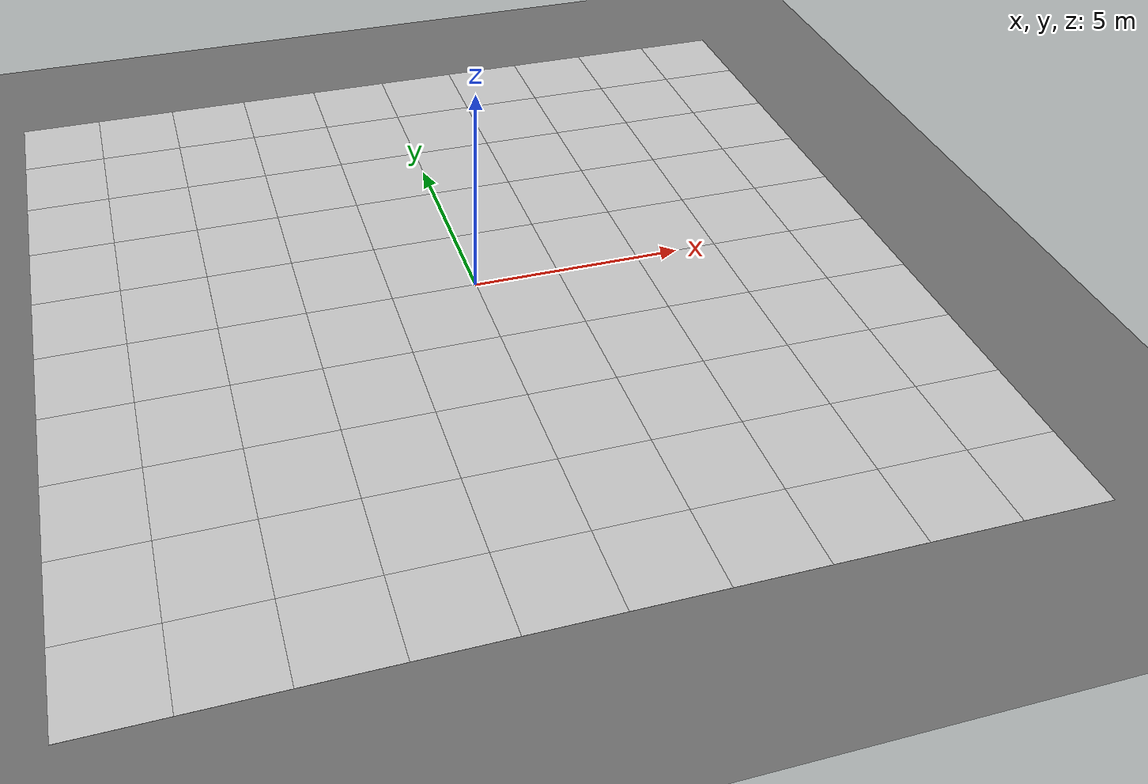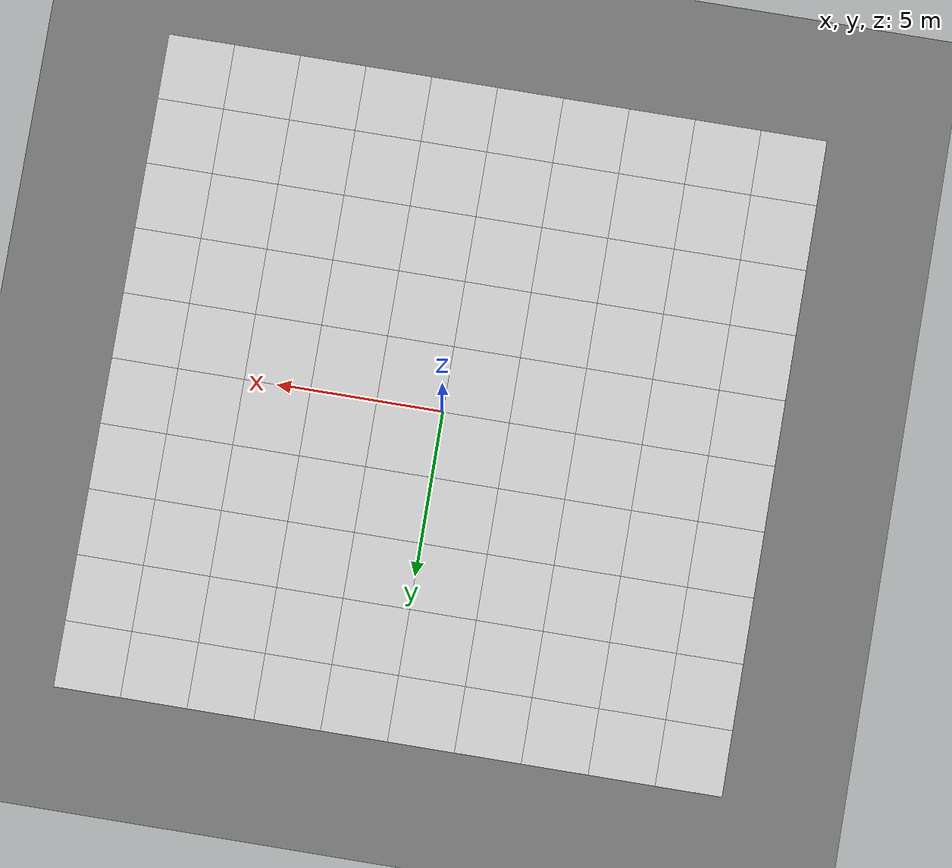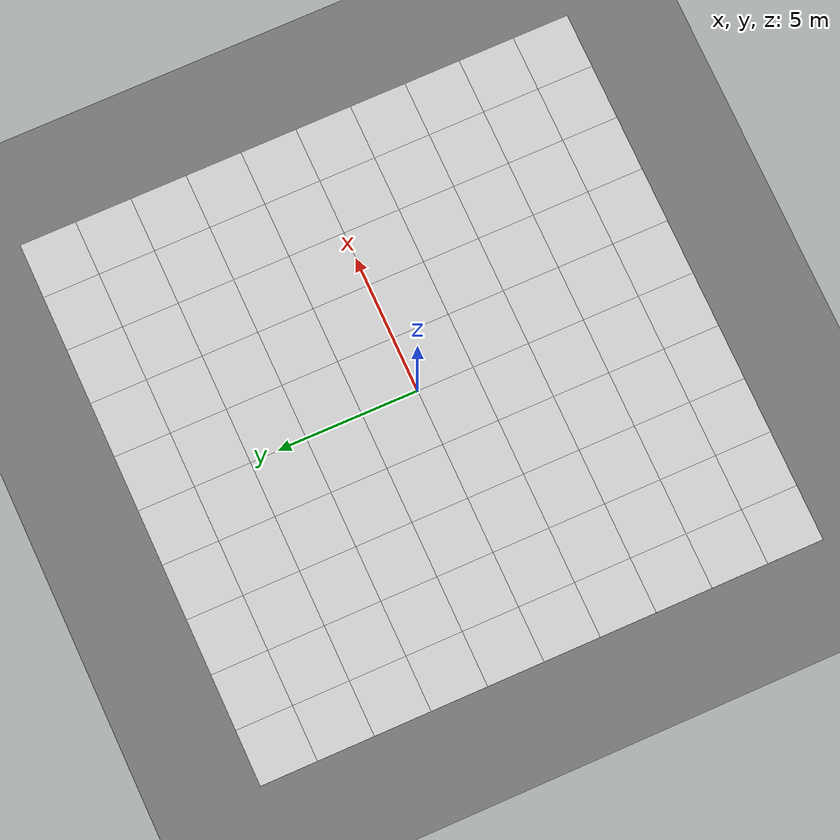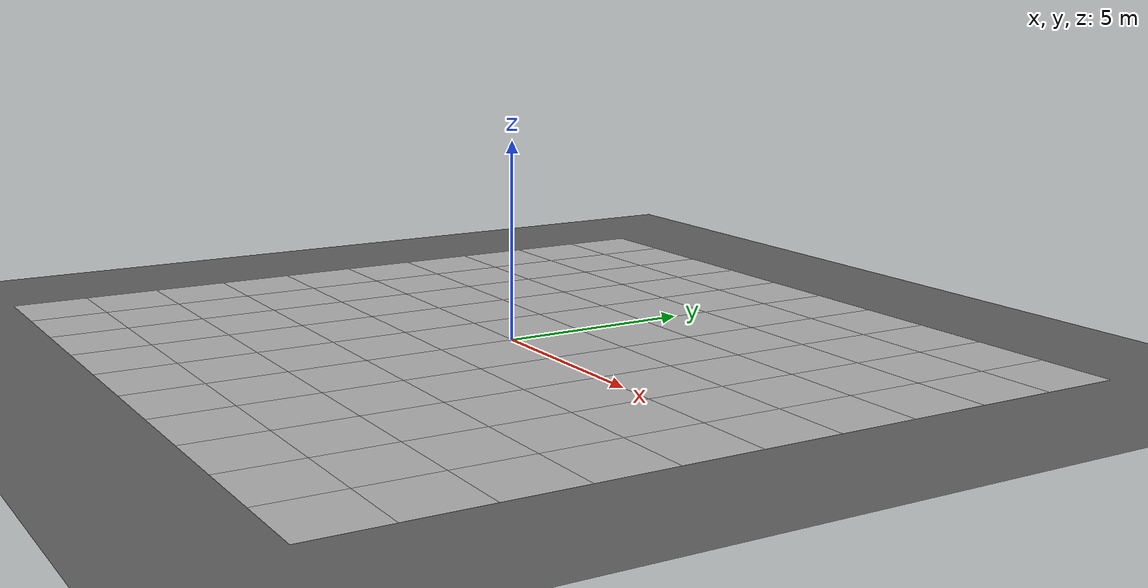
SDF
<sdf version="1.9">
 <world name="test">
  <model name="ground_plane">
   <static>true</static>
   <link name="link">
    <collision name="collision">
     <geometry><plane><normal>0 0 1</normal><size>100 100</size></plane></geometry>
    </collision>
    <visual name="visual">
     <geometry><plane><normal>0 0 1</normal><size>100 100</size></plane></geometry>
     <material>
      <lighting>true</lighting>
      <ambient>0.45 0.45 0.45 1</ambient>
      <diffuse>0.45 0.45 0.45 1</diffuse>
      <specular>0.0 0.0 0.0 1</specular>
     </material>
    </visual>
   </link>
  </model>
  <model name="ground_tiles">
   <static>true</static>
   <pose>0 0 0.002 0 0 0</pose>
   <link name="link">
    <visual name="tile_xpm9_ypm9">
     <pose>-9 -9 0 0 0 0</pose>
     <geometry><plane><normal>0 0 1</normal><size>2 2</size></plane></geometry>
     <material>
      <lighting>true</lighting>
      <ambient>0.8 0.8 0.8 1</ambient>
      <diffuse>0.8 0.8 0.8 1</diffuse>
      <specular>0.2 0.2 0.2 1</specular>
      <pbr>
       <metal>
        <albedo_map>model://ground_texture/media/concrete_floor.png</albedo_map>
        <metalness>0.0</metalness>
        <roughness>0.9</roughness>
       </metal>
      </pbr>
     </material>
    </visual>
    <visual name="tile_xpm9_ypm7">
     <pose>-9 -7 0 0 0 0</pose>
     <geometry><plane><normal>0 0 1</normal><size>2 2</size></plane></geometry>
     <material>
      <lighting>true</lighting>
      <ambient>0.8 0.8 0.8 1</ambient>
      <diffuse>0.8 0.8 0.8 1</diffuse>
      <specular>0.2 0.2 0.2 1</specular>
      <pbr>
       <metal>
        <albedo_map>model://ground_texture/media/concrete_floor.png</albedo_map>
        <metalness>0.0</metalness>
        <roughness>0.9</roughness>
       </metal>
      </pbr>
     </material>
    </visual>
    <visual name="tile_xpm9_ypm5">
     <pose>-9 -5 0 0 0 0</pose>
     <geometry><plane><normal>0 0 1</normal><size>2 2</size></plane></geometry>
     <material>
      <lighting>true</lighting>
      <ambient>0.8 0.8 0.8 1</ambient>
      <diffuse>0.8 0.8 0.8 1</diffuse>
      <specular>0.2 0.2 0.2 1</specular>
      <pbr>
       <metal>
        <albedo_map>model://ground_texture/media/concrete_floor.png</albedo_map>
        <metalness>0.0</metalness>
        <roughness>0.9</roughness>
       </metal>
      </pbr>
     </material>
    </visual>
    <visual name="tile_xpm9_ypm3">
     <pose>-9 -3 0 0 0 0</pose>
     <geometry><plane><normal>0 0 1</normal><size>2 2</size></plane></geometry>
     <material>
      <lighting>true</lighting>
      <ambient>0.8 0.8 0.8 1</ambient>
      <diffuse>0.8 0.8 0.8 1</diffuse>
      <specular>0.2 0.2 0.2 1</specular>
      <pbr>
       <metal>
        <albedo_map>model://ground_texture/media/concrete_floor.png</albedo_map>
        <metalness>0.0</metalness>
        <roughness>0.9</roughness>
       </metal>
      </pbr>
     </material>
    </visual>
    <visual name="tile_xpm9_ypm1">
     <pose>-9 -1 0 0 0 0</pose>
     <geometry><plane><normal>0 0 1</normal><size>2 2</size></plane></geometry>
     <material>
      <lighting>true</lighting>
      <ambient>0.8 0.8 0.8 1</ambient>
      <diffuse>0.8 0.8 0.8 1</diffuse>
      <specular>0.2 0.2 0.2 1</specular>
      <pbr>
       <metal>
        <albedo_map>model://ground_texture/media/concrete_floor.png</albedo_map>
        <metalness>0.0</metalness>
        <roughness>0.9</roughness>
       </metal>
      </pbr>
     </material>
    </visual>
    <visual name="tile_xpm9_yp1">
     <pose>-9 1 0 0 0 0</pose>
     <geometry><plane><normal>0 0 1</normal><size>2 2</size></plane></geometry>
     <material>
      <lighting>true</lighting>
      <ambient>0.8 0.8 0.8 1</ambient>
      <diffuse>0.8 0.8 0.8 1</diffuse>
      <specular>0.2 0.2 0.2 1</specular>
      <pbr>
       <metal>
        <albedo_map>model://ground_texture/media/concrete_floor.png</albedo_map>
        <metalness>0.0</metalness>
        <roughness>0.9</roughness>
       </metal>
      </pbr>
     </material>
    </visual>
    <visual name="tile_xpm9_yp3">
     <pose>-9 3 0 0 0 0</pose>
     <geometry><plane><normal>0 0 1</normal><size>2 2</size></plane></geometry>
     <material>
      <lighting>true</lighting>
      <ambient>0.8 0.8 0.8 1</ambient>
      <diffuse>0.8 0.8 0.8 1</diffuse>
      <specular>0.2 0.2 0.2 1</specular>
      <pbr>
       <metal>
        <albedo_map>model://ground_texture/media/concrete_floor.png</albedo_map>
        <metalness>0.0</metalness>
        <roughness>0.9</roughness>
       </metal>
      </pbr>
     </material>
    </visual>
    <visual name="tile_xpm9_yp5">
     <pose>-9 5 0 0 0 0</pose>
     <geometry><plane><normal>0 0 1</normal><size>2 2</size></plane></geometry>
     <material>
      <lighting>true</lighting>
      <ambient>0.8 0.8 0.8 1</ambient>
      <diffuse>0.8 0.8 0.8 1</diffuse>
      <specular>0.2 0.2 0.2 1</specular>
      <pbr>
       <metal>
        <albedo_map>model://ground_texture/media/concrete_floor.png</albedo_map>
        <metalness>0.0</metalness>
        <roughness>0.9</roughness>
       </metal>
      </pbr>
     </material>
    </visual>
    <visual name="tile_xpm9_yp7">
     <pose>-9 7 0 0 0 0</pose>
     <geometry><plane><normal>0 0 1</normal><size>2 2</size></plane></geometry>
     <material>
      <lighting>true</lighting>
      <ambient>0.8 0.8 0.8 1</ambient>
      <diffuse>0.8 0.8 0.8 1</diffuse>
      <specular>0.2 0.2 0.2 1</specular>
      <pbr>
       <metal>
        <albedo_map>model://ground_texture/media/concrete_floor.png</albedo_map>
        <metalness>0.0</metalness>
        <roughness>0.9</roughness>
       </metal>
      </pbr>
     </material>
    </visual>
    <visual name="tile_xpm9_yp9">
     <pose>-9 9 0 0 0 0</pose>
     <geometry><plane><normal>0 0 1</normal><size>2 2</size></plane></geometry>
     <material>
      <lighting>true</lighting>
      <ambient>0.8 0.8 0.8 1</ambient>
      <diffuse>0.8 0.8 0.8 1</diffuse>
      <specular>0.2 0.2 0.2 1</specular>
      <pbr>
       <metal>
        <albedo_map>model://ground_texture/media/concrete_floor.png</albedo_map>
        <metalness>0.0</metalness>
        <roughness>0.9</roughness>
       </metal>
      </pbr>
     </material>
    </visual>
    <visual name="tile_xpm7_ypm9">
     <pose>-7 -9 0 0 0 0</pose>
     <geometry><plane><normal>0 0 1</normal><size>2 2</size></plane></geometry>
     <material>
      <lighting>true</lighting>
      <ambient>0.8 0.8 0.8 1</ambient>
      <diffuse>0.8 0.8 0.8 1</diffuse>
      <specular>0.2 0.2 0.2 1</specular>
      <pbr>
       <metal>
        <albedo_map>model://ground_texture/media/concrete_floor.png</albedo_map>
        <metalness>0.0</metalness>
        <roughness>0.9</roughness>
       </metal>
      </pbr>
     </material>
    </visual>
    <visual name="tile_xpm7_ypm7">
     <pose>-7 -7 0 0 0 0</pose>
     <geometry><plane><normal>0 0 1</normal><size>2 2</size></plane></geometry>
     <material>
      <lighting>true</lighting>
      <ambient>0.8 0.8 0.8 1</ambient>
      <diffuse>0.8 0.8 0.8 1</diffuse>
      <specular>0.2 0.2 0.2 1</specular>
      <pbr>
       <metal>
        <albedo_map>model://ground_texture/media/concrete_floor.png</albedo_map>
        <metalness>0.0</metalness>
        <roughness>0.9</roughness>
       </metal>
      </pbr>
     </material>
    </visual>
    <visual name="tile_xpm7_ypm5">
     <pose>-7 -5 0 0 0 0</pose>
     <geometry><plane><normal>0 0 1</normal><size>2 2</size></plane></geometry>
     <material>
      <lighting>true</lighting>
      <ambient>0.8 0.8 0.8 1</ambient>
      <diffuse>0.8 0.8 0.8 1</diffuse>
      <specular>0.2 0.2 0.2 1</specular>
      <pbr>
       <metal>
        <albedo_map>model://ground_texture/media/concrete_floor.png</albedo_map>
        <metalness>0.0</metalness>
        <roughness>0.9</roughness>
       </metal>
      </pbr>
     </material>
    </visual>
    <visual name="tile_xpm7_ypm3">
     <pose>-7 -3 0 0 0 0</pose>
     <geometry><plane><normal>0 0 1</normal><size>2 2</size></plane></geometry>
     <material>
      <lighting>true</lighting>
      <ambient>0.8 0.8 0.8 1</ambient>
      <diffuse>0.8 0.8 0.8 1</diffuse>
      <specular>0.2 0.2 0.2 1</specular>
      <pbr>
       <metal>
        <albedo_map>model://ground_texture/media/concrete_floor.png</albedo_map>
        <metalness>0.0</metalness>
        <roughness>0.9</roughness>
       </metal>
      </pbr>
     </material>
    </visual>
    <visual name="tile_xpm7_ypm1">
     <pose>-7 -1 0 0 0 0</pose>
     <geometry><plane><normal>0 0 1</normal><size>2 2</size></plane></geometry>
     <material>
      <lighting>true</lighting>
      <ambient>0.8 0.8 0.8 1</ambient>
      <diffuse>0.8 0.8 0.8 1</diffuse>
      <specular>0.2 0.2 0.2 1</specular>
      <pbr>
       <metal>
        <albedo_map>model://ground_texture/media/concrete_floor.png</albedo_map>
        <metalness>0.0</metalness>
        <roughness>0.9</roughness>
       </metal>
      </pbr>
     </material>
    </visual>
    <visual name="tile_xpm7_yp1">
     <pose>-7 1 0 0 0 0</pose>
     <geometry><plane><normal>0 0 1</normal><size>2 2</size></plane></geometry>
     <material>
      <lighting>true</lighting>
      <ambient>0.8 0.8 0.8 1</ambient>
      <diffuse>0.8 0.8 0.8 1</diffuse>
      <specular>0.2 0.2 0.2 1</specular>
      <pbr>
       <metal>
        <albedo_map>model://ground_texture/media/concrete_floor.png</albedo_map>
        <metalness>0.0</metalness>
        <roughness>0.9</roughness>
       </metal>
      </pbr>
     </material>
    </visual>
    <visual name="tile_xpm7_yp3">
     <pose>-7 3 0 0 0 0</pose>
     <geometry><plane><normal>0 0 1</normal><size>2 2</size></plane></geometry>
     <material>
      <lighting>true</lighting>
      <ambient>0.8 0.8 0.8 1</ambient>
      <diffuse>0.8 0.8 0.8 1</diffuse>
      <specular>0.2 0.2 0.2 1</specular>
      <pbr>
       <metal>
        <albedo_map>model://ground_texture/media/concrete_floor.png</albedo_map>
        <metalness>0.0</metalness>
        <roughness>0.9</roughness>
       </metal>
      </pbr>
     </material>
    </visual>
    <visual name="tile_xpm7_yp5">
     <pose>-7 5 0 0 0 0</pose>
     <geometry><plane><normal>0 0 1</normal><size>2 2</size></plane></geometry>
     <material>
      <lighting>true</lighting>
      <ambient>0.8 0.8 0.8 1</ambient>
      <diffuse>0.8 0.8 0.8 1</diffuse>
      <specular>0.2 0.2 0.2 1</specular>
      <pbr>
       <metal>
        <albedo_map>model://ground_texture/media/concrete_floor.png</albedo_map>
        <metalness>0.0</metalness>
        <roughness>0.9</roughness>
       </metal>
      </pbr>
     </material>
    </visual>
    <visual name="tile_xpm7_yp7">
     <pose>-7 7 0 0 0 0</pose>
     <geometry><plane><normal>0 0 1</normal><size>2 2</size></plane></geometry>
     <material>
      <lighting>true</lighting>
      <ambient>0.8 0.8 0.8 1</ambient>
      <diffuse>0.8 0.8 0.8 1</diffuse>
      <specular>0.2 0.2 0.2 1</specular>
      <pbr>
       <metal>
        <albedo_map>model://ground_texture/media/concrete_floor.png</albedo_map>
        <metalness>0.0</metalness>
        <roughness>0.9</roughness>
       </metal>
      </pbr>
     </material>
    </visual>
    <visual name="tile_xpm7_yp9">
     <pose>-7 9 0 0 0 0</pose>
     <geometry><plane><normal>0 0 1</normal><size>2 2</size></plane></geometry>
     <material>
      <lighting>true</lighting>
      <ambient>0.8 0.8 0.8 1</ambient>
      <diffuse>0.8 0.8 0.8 1</diffuse>
      <specular>0.2 0.2 0.2 1</specular>
      <pbr>
       <metal>
        <albedo_map>model://ground_texture/media/concrete_floor.png</albedo_map>
        <metalness>0.0</metalness>
        <roughness>0.9</roughness>
       </metal>
      </pbr>
     </material>
    </visual>
    <visual name="tile_xpm5_ypm9">
     <pose>-5 -9 0 0 0 0</pose>
     <geometry><plane><normal>0 0 1</normal><size>2 2</size></plane></geometry>
     <material>
      <lighting>true</lighting>
      <ambient>0.8 0.8 0.8 1</ambient>
      <diffuse>0.8 0.8 0.8 1</diffuse>
      <specular>0.2 0.2 0.2 1</specular>
      <pbr>
       <metal>
        <albedo_map>model://ground_texture/media/concrete_floor.png</albedo_map>
        <metalness>0.0</metalness>
        <roughness>0.9</roughness>
       </metal>
      </pbr>
     </material>
    </visual>
    <visual name="tile_xpm5_ypm7">
     <pose>-5 -7 0 0 0 0</pose>
     <geometry><plane><normal>0 0 1</normal><size>2 2</size></plane></geometry>
     <material>
      <lighting>true</lighting>
      <ambient>0.8 0.8 0.8 1</ambient>
      <diffuse>0.8 0.8 0.8 1</diffuse>
      <specular>0.2 0.2 0.2 1</specular>
      <pbr>
       <metal>
        <albedo_map>model://ground_texture/media/concrete_floor.png</albedo_map>
        <metalness>0.0</metalness>
        <roughness>0.9</roughness>
       </metal>
      </pbr>
     </material>
    </visual>
    <visual name="tile_xpm5_ypm5">
     <pose>-5 -5 0 0 0 0</pose>
     <geometry><plane><normal>0 0 1</normal><size>2 2</size></plane></geometry>
     <material>
      <lighting>true</lighting>
      <ambient>0.8 0.8 0.8 1</ambient>
      <diffuse>0.8 0.8 0.8 1</diffuse>
      <specular>0.2 0.2 0.2 1</specular>
      <pbr>
       <metal>
        <albedo_map>model://ground_texture/media/concrete_floor.png</albedo_map>
        <metalness>0.0</metalness>
        <roughness>0.9</roughness>
       </metal>
      </pbr>
     </material>
    </visual>
    <visual name="tile_xpm5_ypm3">
     <pose>-5 -3 0 0 0 0</pose>
     <geometry><plane><normal>0 0 1</normal><size>2 2</size></plane></geometry>
     <material>
      <lighting>true</lighting>
      <ambient>0.8 0.8 0.8 1</ambient>
      <diffuse>0.8 0.8 0.8 1</diffuse>
      <specular>0.2 0.2 0.2 1</specular>
      <pbr>
       <metal>
        <albedo_map>model://ground_texture/media/concrete_floor.png</albedo_map>
        <metalness>0.0</metalness>
        <roughness>0.9</roughness>
       </metal>
      </pbr>
     </material>
    </visual>
    <visual name="tile_xpm5_ypm1">
     <pose>-5 -1 0 0 0 0</pose>
     <geometry><plane><normal>0 0 1</normal><size>2 2</size></plane></geometry>
     <material>
      <lighting>true</lighting>
      <ambient>0.8 0.8 0.8 1</ambient>
      <diffuse>0.8 0.8 0.8 1</diffuse>
      <specular>0.2 0.2 0.2 1</specular>
      <pbr>
       <metal>
        <albedo_map>model://ground_texture/media/concrete_floor.png</albedo_map>
        <metalness>0.0</metalness>
        <roughness>0.9</roughness>
       </metal>
      </pbr>
     </material>
    </visual>
    <visual name="tile_xpm5_yp1">
     <pose>-5 1 0 0 0 0</pose>
     <geometry><plane><normal>0 0 1</normal><size>2 2</size></plane></geometry>
     <material>
      <lighting>true</lighting>
      <ambient>0.8 0.8 0.8 1</ambient>
      <diffuse>0.8 0.8 0.8 1</diffuse>
      <specular>0.2 0.2 0.2 1</specular>
      <pbr>
       <metal>
        <albedo_map>model://ground_texture/media/concrete_floor.png</albedo_map>
        <metalness>0.0</metalness>
        <roughness>0.9</roughness>
       </metal>
      </pbr>
     </material>
    </visual>
    <visual name="tile_xpm5_yp3">
     <pose>-5 3 0 0 0 0</pose>
     <geometry><plane><normal>0 0 1</normal><size>2 2</size></plane></geometry>
     <material>
      <lighting>true</lighting>
      <ambient>0.8 0.8 0.8 1</ambient>
      <diffuse>0.8 0.8 0.8 1</diffuse>
      <specular>0.2 0.2 0.2 1</specular>
      <pbr>
       <metal>
        <albedo_map>model://ground_texture/media/concrete_floor.png</albedo_map>
        <metalness>0.0</metalness>
        <roughness>0.9</roughness>
       </metal>
      </pbr>
     </material>
    </visual>
    <visual name="tile_xpm5_yp5">
     <pose>-5 5 0 0 0 0</pose>
     <geometry><plane><normal>0 0 1</normal><size>2 2</size></plane></geometry>
     <material>
      <lighting>true</lighting>
      <ambient>0.8 0.8 0.8 1</ambient>
      <diffuse>0.8 0.8 0.8 1</diffuse>
      <specular>0.2 0.2 0.2 1</specular>
      <pbr>
       <metal>
        <albedo_map>model://ground_texture/media/concrete_floor.png</albedo_map>
        <metalness>0.0</metalness>
        <roughness>0.9</roughness>
       </metal>
      </pbr>
     </material>
    </visual>
    <visual name="tile_xpm5_yp7">
     <pose>-5 7 0 0 0 0</pose>
     <geometry><plane><normal>0 0 1</normal><size>2 2</size></plane></geometry>
     <material>
      <lighting>true</lighting>
      <ambient>0.8 0.8 0.8 1</ambient>
      <diffuse>0.8 0.8 0.8 1</diffuse>
      <specular>0.2 0.2 0.2 1</specular>
      <pbr>
       <metal>
        <albedo_map>model://ground_texture/media/concrete_floor.png</albedo_map>
        <metalness>0.0</metalness>
        <roughness>0.9</roughness>
       </metal>
      </pbr>
     </material>
    </visual>
    <visual name="tile_xpm5_yp9">
     <pose>-5 9 0 0 0 0</pose>
     <geometry><plane><normal>0 0 1</normal><size>2 2</size></plane></geometry>
     <material>
      <lighting>true</lighting>
      <ambient>0.8 0.8 0.8 1</ambient>
      <diffuse>0.8 0.8 0.8 1</diffuse>
      <specular>0.2 0.2 0.2 1</specular>
      <pbr>
       <metal>
        <albedo_map>model://ground_texture/media/concrete_floor.png</albedo_map>
        <metalness>0.0</metalness>
        <roughness>0.9</roughness>
       </metal>
      </pbr>
     </material>
    </visual>
    <visual name="tile_xpm3_ypm9">
     <pose>-3 -9 0 0 0 0</pose>
     <geometry><plane><normal>0 0 1</normal><size>2 2</size></plane></geometry>
     <material>
      <lighting>true</lighting>
      <ambient>0.8 0.8 0.8 1</ambient>
      <diffuse>0.8 0.8 0.8 1</diffuse>
      <specular>0.2 0.2 0.2 1</specular>
      <pbr>
       <metal>
        <albedo_map>model://ground_texture/media/concrete_floor.png</albedo_map>
        <metalness>0.0</metalness>
        <roughness>0.9</roughness>
       </metal>
      </pbr>
     </material>
    </visual>
    <visual name="tile_xpm3_ypm7">
     <pose>-3 -7 0 0 0 0</pose>
     <geometry><plane><normal>0 0 1</normal><size>2 2</size></plane></geometry>
     <material>
      <lighting>true</lighting>
      <ambient>0.8 0.8 0.8 1</ambient>
      <diffuse>0.8 0.8 0.8 1</diffuse>
      <specular>0.2 0.2 0.2 1</specular>
      <pbr>
       <metal>
        <albedo_map>model://ground_texture/media/concrete_floor.png</albedo_map>
        <metalness>0.0</metalness>
        <roughness>0.9</roughness>
       </metal>
      </pbr>
     </material>
    </visual>
    <visual name="tile_xpm3_ypm5">
     <pose>-3 -5 0 0 0 0</pose>
     <geometry><plane><normal>0 0 1</normal><size>2 2</size></plane></geometry>
     <material>
      <lighting>true</lighting>
      <ambient>0.8 0.8 0.8 1</ambient>
      <diffuse>0.8 0.8 0.8 1</diffuse>
      <specular>0.2 0.2 0.2 1</specular>
      <pbr>
       <metal>
        <albedo_map>model://ground_texture/media/concrete_floor.png</albedo_map>
        <metalness>0.0</metalness>
        <roughness>0.9</roughness>
       </metal>
      </pbr>
     </material>
    </visual>
    <visual name="tile_xpm3_ypm3">
     <pose>-3 -3 0 0 0 0</pose>
     <geometry><plane><normal>0 0 1</normal><size>2 2</size></plane></geometry>
     <material>
      <lighting>true</lighting>
      <ambient>0.8 0.8 0.8 1</ambient>
      <diffuse>0.8 0.8 0.8 1</diffuse>
      <specular>0.2 0.2 0.2 1</specular>
      <pbr>
       <metal>
        <albedo_map>model://ground_texture/media/concrete_floor.png</albedo_map>
        <metalness>0.0</metalness>
        <roughness>0.9</roughness>
       </metal>
      </pbr>
     </material>
    </visual>
    <visual name="tile_xpm3_ypm1">
     <pose>-3 -1 0 0 0 0</pose>
     <geometry><plane><normal>0 0 1</normal><size>2 2</size></plane></geometry>
     <material>
      <lighting>true</lighting>
      <ambient>0.8 0.8 0.8 1</ambient>
      <diffuse>0.8 0.8 0.8 1</diffuse>
      <specular>0.2 0.2 0.2 1</specular>
      <pbr>
       <metal>
        <albedo_map>model://ground_texture/media/concrete_floor.png</albedo_map>
        <metalness>0.0</metalness>
        <roughness>0.9</roughness>
       </metal>
      </pbr>
     </material>
    </visual>
    <visual name="tile_xpm3_yp1">
     <pose>-3 1 0 0 0 0</pose>
     <geometry><plane><normal>0 0 1</normal><size>2 2</size></plane></geometry>
     <material>
      <lighting>true</lighting>
      <ambient>0.8 0.8 0.8 1</ambient>
      <diffuse>0.8 0.8 0.8 1</diffuse>
      <specular>0.2 0.2 0.2 1</specular>
      <pbr>
       <metal>
        <albedo_map>model://ground_texture/media/concrete_floor.png</albedo_map>
        <metalness>0.0</metalness>
        <roughness>0.9</roughness>
       </metal>
      </pbr>
     </material>
    </visual>
    <visual name="tile_xpm3_yp3">
     <pose>-3 3 0 0 0 0</pose>
     <geometry><plane><normal>0 0 1</normal><size>2 2</size></plane></geometry>
     <material>
      <lighting>true</lighting>
      <ambient>0.8 0.8 0.8 1</ambient>
      <diffuse>0.8 0.8 0.8 1</diffuse>
      <specular>0.2 0.2 0.2 1</specular>
      <pbr>
       <metal>
        <albedo_map>model://ground_texture/media/concrete_floor.png</albedo_map>
        <metalness>0.0</metalness>
        <roughness>0.9</roughness>
       </metal>
      </pbr>
     </material>
    </visual>
    <visual name="tile_xpm3_yp5">
     <pose>-3 5 0 0 0 0</pose>
     <geometry><plane><normal>0 0 1</normal><size>2 2</size></plane></geometry>
     <material>
      <lighting>true</lighting>
      <ambient>0.8 0.8 0.8 1</ambient>
      <diffuse>0.8 0.8 0.8 1</diffuse>
      <specular>0.2 0.2 0.2 1</specular>
      <pbr>
       <metal>
        <albedo_map>model://ground_texture/media/concrete_floor.png</albedo_map>
        <metalness>0.0</metalness>
        <roughness>0.9</roughness>
       </metal>
      </pbr>
     </material>
    </visual>
    <visual name="tile_xpm3_yp7">
     <pose>-3 7 0 0 0 0</pose>
     <geometry><plane><normal>0 0 1</normal><size>2 2</size></plane></geometry>
     <material>
      <lighting>true</lighting>
      <ambient>0.8 0.8 0.8 1</ambient>
      <diffuse>0.8 0.8 0.8 1</diffuse>
      <specular>0.2 0.2 0.2 1</specular>
      <pbr>
       <metal>
        <albedo_map>model://ground_texture/media/concrete_floor.png</albedo_map>
        <metalness>0.0</metalness>
        <roughness>0.9</roughness>
       </metal>
      </pbr>
     </material>
    </visual>
    <visual name="tile_xpm3_yp9">
     <pose>-3 9 0 0 0 0</pose>
     <geometry><plane><normal>0 0 1</normal><size>2 2</size></plane></geometry>
     <material>
      <lighting>true</lighting>
      <ambient>0.8 0.8 0.8 1</ambient>
      <diffuse>0.8 0.8 0.8 1</diffuse>
      <specular>0.2 0.2 0.2 1</specular>
      <pbr>
       <metal>
        <albedo_map>model://ground_texture/media/concrete_floor.png</albedo_map>
        <metalness>0.0</metalness>
        <roughness>0.9</roughness>
       </metal>
      </pbr>
     </material>
    </visual>
    <visual name="tile_xpm1_ypm9">
     <pose>-1 -9 0 0 0 0</pose>
     <geometry><plane><normal>0 0 1</normal><size>2 2</size></plane></geometry>
     <material>
      <lighting>true</lighting>
      <ambient>0.8 0.8 0.8 1</ambient>
      <diffuse>0.8 0.8 0.8 1</diffuse>
      <specular>0.2 0.2 0.2 1</specular>
      <pbr>
       <metal>
        <albedo_map>model://ground_texture/media/concrete_floor.png</albedo_map>
        <metalness>0.0</metalness>
        <roughness>0.9</roughness>
       </metal>
      </pbr>
     </material>
    </visual>
    <visual name="tile_xpm1_ypm7">
     <pose>-1 -7 0 0 0 0</pose>
     <geometry><plane><normal>0 0 1</normal><size>2 2</size></plane></geometry>
     <material>
      <lighting>true</lighting>
      <ambient>0.8 0.8 0.8 1</ambient>
      <diffuse>0.8 0.8 0.8 1</diffuse>
      <specular>0.2 0.2 0.2 1</specular>
      <pbr>
       <metal>
        <albedo_map>model://ground_texture/media/concrete_floor.png</albedo_map>
        <metalness>0.0</metalness>
        <roughness>0.9</roughness>
       </metal>
      </pbr>
     </material>
    </visual>
    <visual name="tile_xpm1_ypm5">
     <pose>-1 -5 0 0 0 0</pose>
     <geometry><plane><normal>0 0 1</normal><size>2 2</size></plane></geometry>
     <material>
      <lighting>true</lighting>
      <ambient>0.8 0.8 0.8 1</ambient>
      <diffuse>0.8 0.8 0.8 1</diffuse>
      <specular>0.2 0.2 0.2 1</specular>
      <pbr>
       <metal>
        <albedo_map>model://ground_texture/media/concrete_floor.png</albedo_map>
        <metalness>0.0</metalness>
        <roughness>0.9</roughness>
       </metal>
      </pbr>
     </material>
    </visual>
    <visual name="tile_xpm1_ypm3">
     <pose>-1 -3 0 0 0 0</pose>
     <geometry><plane><normal>0 0 1</normal><size>2 2</size></plane></geometry>
     <material>
      <lighting>true</lighting>
      <ambient>0.8 0.8 0.8 1</ambient>
      <diffuse>0.8 0.8 0.8 1</diffuse>
      <specular>0.2 0.2 0.2 1</specular>
      <pbr>
       <metal>
        <albedo_map>model://ground_texture/media/concrete_floor.png</albedo_map>
        <metalness>0.0</metalness>
        <roughness>0.9</roughness>
       </metal>
      </pbr>
     </material>
    </visual>
    <visual name="tile_xpm1_ypm1">
     <pose>-1 -1 0 0 0 0</pose>
     <geometry><plane><normal>0 0 1</normal><size>2 2</size></plane></geometry>
     <material>
      <lighting>true</lighting>
      <ambient>0.8 0.8 0.8 1</ambient>
      <diffuse>0.8 0.8 0.8 1</diffuse>
      <specular>0.2 0.2 0.2 1</specular>
      <pbr>
       <metal>
        <albedo_map>model://ground_texture/media/concrete_floor.png</albedo_map>
        <metalness>0.0</metalness>
        <roughness>0.9</roughness>
       </metal>
      </pbr>
     </material>
    </visual>
    <visual name="tile_xpm1_yp1">
     <pose>-1 1 0 0 0 0</pose>
     <geometry><plane><normal>0 0 1</normal><size>2 2</size></plane></geometry>
     <material>
      <lighting>true</lighting>
      <ambient>0.8 0.8 0.8 1</ambient>
      <diffuse>0.8 0.8 0.8 1</diffuse>
      <specular>0.2 0.2 0.2 1</specular>
      <pbr>
       <metal>
        <albedo_map>model://ground_texture/media/concrete_floor.png</albedo_map>
        <metalness>0.0</metalness>
        <roughness>0.9</roughness>
       </metal>
      </pbr>
     </material>
    </visual>
    <visual name="tile_xpm1_yp3">
     <pose>-1 3 0 0 0 0</pose>
     <geometry><plane><normal>0 0 1</normal><size>2 2</size></plane></geometry>
     <material>
      <lighting>true</lighting>
      <ambient>0.8 0.8 0.8 1</ambient>
      <diffuse>0.8 0.8 0.8 1</diffuse>
      <specular>0.2 0.2 0.2 1</specular>
      <pbr>
       <metal>
        <albedo_map>model://ground_texture/media/concrete_floor.png</albedo_map>
        <metalness>0.0</metalness>
        <roughness>0.9</roughness>
       </metal>
      </pbr>
     </material>
    </visual>
    <visual name="tile_xpm1_yp5">
     <pose>-1 5 0 0 0 0</pose>
     <geometry><plane><normal>0 0 1</normal><size>2 2</size></plane></geometry>
     <material>
      <lighting>true</lighting>
      <ambient>0.8 0.8 0.8 1</ambient>
      <diffuse>0.8 0.8 0.8 1</diffuse>
      <specular>0.2 0.2 0.2 1</specular>
      <pbr>
       <metal>
        <albedo_map>model://ground_texture/media/concrete_floor.png</albedo_map>
        <metalness>0.0</metalness>
        <roughness>0.9</roughness>
       </metal>
      </pbr>
     </material>
    </visual>
    <visual name="tile_xpm1_yp7">
     <pose>-1 7 0 0 0 0</pose>
     <geometry><plane><normal>0 0 1</normal><size>2 2</size></plane></geometry>
     <material>
      <lighting>true</lighting>
      <ambient>0.8 0.8 0.8 1</ambient>
      <diffuse>0.8 0.8 0.8 1</diffuse>
      <specular>0.2 0.2 0.2 1</specular>
      <pbr>
       <metal>
        <albedo_map>model://ground_texture/media/concrete_floor.png</albedo_map>
        <metalness>0.0</metalness>
        <roughness>0.9</roughness>
       </metal>
      </pbr>
     </material>
    </visual>
    <visual name="tile_xpm1_yp9">
     <pose>-1 9 0 0 0 0</pose>
     <geometry><plane><normal>0 0 1</normal><size>2 2</size></plane></geometry>
     <material>
      <lighting>true</lighting>
      <ambient>0.8 0.8 0.8 1</ambient>
      <diffuse>0.8 0.8 0.8 1</diffuse>
      <specular>0.2 0.2 0.2 1</specular>
      <pbr>
       <metal>
        <albedo_map>model://ground_texture/media/concrete_floor.png</albedo_map>
        <metalness>0.0</metalness>
        <roughness>0.9</roughness>
       </metal>
      </pbr>
     </material>
    </visual>
    <visual name="tile_xp1_ypm9">
     <pose>1 -9 0 0 0 0</pose>
     <geometry><plane><normal>0 0 1</normal><size>2 2</size></plane></geometry>
     <material>
      <lighting>true</lighting>
      <ambient>0.8 0.8 0.8 1</ambient>
      <diffuse>0.8 0.8 0.8 1</diffuse>
      <specular>0.2 0.2 0.2 1</specular>
      <pbr>
       <metal>
        <albedo_map>model://ground_texture/media/concrete_floor.png</albedo_map>
        <metalness>0.0</metalness>
        <roughness>0.9</roughness>
       </metal>
      </pbr>
     </material>
    </visual>
    <visual name="tile_xp1_ypm7">
     <pose>1 -7 0 0 0 0</pose>
     <geometry><plane><normal>0 0 1</normal><size>2 2</size></plane></geometry>
     <material>
      <lighting>true</lighting>
      <ambient>0.8 0.8 0.8 1</ambient>
      <diffuse>0.8 0.8 0.8 1</diffuse>
      <specular>0.2 0.2 0.2 1</specular>
      <pbr>
       <metal>
        <albedo_map>model://ground_texture/media/concrete_floor.png</albedo_map>
        <metalness>0.0</metalness>
        <roughness>0.9</roughness>
       </metal>
      </pbr>
     </material>
    </visual>
    <visual name="tile_xp1_ypm5">
     <pose>1 -5 0 0 0 0</pose>
     <geometry><plane><normal>0 0 1</normal><size>2 2</size></plane></geometry>
     <material>
      <lighting>true</lighting>
      <ambient>0.8 0.8 0.8 1</ambient>
      <diffuse>0.8 0.8 0.8 1</diffuse>
      <specular>0.2 0.2 0.2 1</specular>
      <pbr>
       <metal>
        <albedo_map>model://ground_texture/media/concrete_floor.png</albedo_map>
        <metalness>0.0</metalness>
        <roughness>0.9</roughness>
       </metal>
      </pbr>
     </material>
    </visual>
    <visual name="tile_xp1_ypm3">
     <pose>1 -3 0 0 0 0</pose>
     <geometry><plane><normal>0 0 1</normal><size>2 2</size></plane></geometry>
     <material>
      <lighting>true</lighting>
      <ambient>0.8 0.8 0.8 1</ambient>
      <diffuse>0.8 0.8 0.8 1</diffuse>
      <specular>0.2 0.2 0.2 1</specular>
      <pbr>
       <metal>
        <albedo_map>model://ground_texture/media/concrete_floor.png</albedo_map>
        <metalness>0.0</metalness>
        <roughness>0.9</roughness>
       </metal>
      </pbr>
     </material>
    </visual>
    <visual name="tile_xp1_ypm1">
     <pose>1 -1 0 0 0 0</pose>
     <geometry><plane><normal>0 0 1</normal><size>2 2</size></plane></geometry>
     <material>
      <lighting>true</lighting>
      <ambient>0.8 0.8 0.8 1</ambient>
      <diffuse>0.8 0.8 0.8 1</diffuse>
      <specular>0.2 0.2 0.2 1</specular>
      <pbr>
       <metal>
        <albedo_map>model://ground_texture/media/concrete_floor.png</albedo_map>
        <metalness>0.0</metalness>
        <roughness>0.9</roughness>
       </metal>
      </pbr>
     </material>
    </visual>
    <visual name="tile_xp1_yp1">
     <pose>1 1 0 0 0 0</pose>
     <geometry><plane><normal>0 0 1</normal><size>2 2</size></plane></geometry>
     <material>
      <lighting>true</lighting>
      <ambient>0.8 0.8 0.8 1</ambient>
      <diffuse>0.8 0.8 0.8 1</diffuse>
      <specular>0.2 0.2 0.2 1</specular>
      <pbr>
       <metal>
        <albedo_map>model://ground_texture/media/concrete_floor.png</albedo_map>
        <metalness>0.0</metalness>
        <roughness>0.9</roughness>
       </metal>
      </pbr>
     </material>
    </visual>
    <visual name="tile_xp1_yp3">
     <pose>1 3 0 0 0 0</pose>
     <geometry><plane><normal>0 0 1</normal><size>2 2</size></plane></geometry>
     <material>
      <lighting>true</lighting>
      <ambient>0.8 0.8 0.8 1</ambient>
      <diffuse>0.8 0.8 0.8 1</diffuse>
      <specular>0.2 0.2 0.2 1</specular>
      <pbr>
       <metal>
        <albedo_map>model://ground_texture/media/concrete_floor.png</albedo_map>
        <metalness>0.0</metalness>
        <roughness>0.9</roughness>
       </metal>
      </pbr>
     </material>
    </visual>
    <visual name="tile_xp1_yp5">
     <pose>1 5 0 0 0 0</pose>
     <geometry><plane><normal>0 0 1</normal><size>2 2</size></plane></geometry>
     <material>
      <lighting>true</lighting>
      <ambient>0.8 0.8 0.8 1</ambient>
      <diffuse>0.8 0.8 0.8 1</diffuse>
      <specular>0.2 0.2 0.2 1</specular>
      <pbr>
       <metal>
        <albedo_map>model://ground_texture/media/concrete_floor.png</albedo_map>
        <metalness>0.0</metalness>
        <roughness>0.9</roughness>
       </metal>
      </pbr>
     </material>
    </visual>
    <visual name="tile_xp1_yp7">
     <pose>1 7 0 0 0 0</pose>
     <geometry><plane><normal>0 0 1</normal><size>2 2</size></plane></geometry>
     <material>
      <lighting>true</lighting>
      <ambient>0.8 0.8 0.8 1</ambient>
      <diffuse>0.8 0.8 0.8 1</diffuse>
      <specular>0.2 0.2 0.2 1</specular>
      <pbr>
       <metal>
        <albedo_map>model://ground_texture/media/concrete_floor.png</albedo_map>
        <metalness>0.0</metalness>
        <roughness>0.9</roughness>
       </metal>
      </pbr>
     </material>
    </visual>
    <visual name="tile_xp1_yp9">
     <pose>1 9 0 0 0 0</pose>
     <geometry><plane><normal>0 0 1</normal><size>2 2</size></plane></geometry>
     <material>
      <lighting>true</lighting>
      <ambient>0.8 0.8 0.8 1</ambient>
      <diffuse>0.8 0.8 0.8 1</diffuse>
      <specular>0.2 0.2 0.2 1</specular>
      <pbr>
       <metal>
        <albedo_map>model://ground_texture/media/concrete_floor.png</albedo_map>
        <metalness>0.0</metalness>
        <roughness>0.9</roughness>
       </metal>
      </pbr>
     </material>
    </visual>
    <visual name="tile_xp3_ypm9">
     <pose>3 -9 0 0 0 0</pose>
     <geometry><plane><normal>0 0 1</normal><size>2 2</size></plane></geometry>
     <material>
      <lighting>true</lighting>
      <ambient>0.8 0.8 0.8 1</ambient>
      <diffuse>0.8 0.8 0.8 1</diffuse>
      <specular>0.2 0.2 0.2 1</specular>
      <pbr>
       <metal>
        <albedo_map>model://ground_texture/media/concrete_floor.png</albedo_map>
        <metalness>0.0</metalness>
        <roughness>0.9</roughness>
       </metal>
      </pbr>
     </material>
    </visual>
    <visual name="tile_xp3_ypm7">
     <pose>3 -7 0 0 0 0</pose>
     <geometry><plane><normal>0 0 1</normal><size>2 2</size></plane></geometry>
     <material>
      <lighting>true</lighting>
      <ambient>0.8 0.8 0.8 1</ambient>
      <diffuse>0.8 0.8 0.8 1</diffuse>
      <specular>0.2 0.2 0.2 1</specular>
      <pbr>
       <metal>
        <albedo_map>model://ground_texture/media/concrete_floor.png</albedo_map>
        <metalness>0.0</metalness>
        <roughness>0.9</roughness>
       </metal>
      </pbr>
     </material>
    </visual>
    <visual name="tile_xp3_ypm5">
     <pose>3 -5 0 0 0 0</pose>
     <geometry><plane><normal>0 0 1</normal><size>2 2</size></plane></geometry>
     <material>
      <lighting>true</lighting>
      <ambient>0.8 0.8 0.8 1</ambient>
      <diffuse>0.8 0.8 0.8 1</diffuse>
      <specular>0.2 0.2 0.2 1</specular>
      <pbr>
       <metal>
        <albedo_map>model://ground_texture/media/concrete_floor.png</albedo_map>
        <metalness>0.0</metalness>
        <roughness>0.9</roughness>
       </metal>
      </pbr>
     </material>
    </visual>
    <visual name="tile_xp3_ypm3">
     <pose>3 -3 0 0 0 0</pose>
     <geometry><plane><normal>0 0 1</normal><size>2 2</size></plane></geometry>
     <material>
      <lighting>true</lighting>
      <ambient>0.8 0.8 0.8 1</ambient>
      <diffuse>0.8 0.8 0.8 1</diffuse>
      <specular>0.2 0.2 0.2 1</specular>
      <pbr>
       <metal>
        <albedo_map>model://ground_texture/media/concrete_floor.png</albedo_map>
        <metalness>0.0</metalness>
        <roughness>0.9</roughness>
       </metal>
      </pbr>
     </material>
    </visual>
    <visual name="tile_xp3_ypm1">
     <pose>3 -1 0 0 0 0</pose>
     <geometry><plane><normal>0 0 1</normal><size>2 2</size></plane></geometry>
     <material>
      <lighting>true</lighting>
      <ambient>0.8 0.8 0.8 1</ambient>
      <diffuse>0.8 0.8 0.8 1</diffuse>
      <specular>0.2 0.2 0.2 1</specular>
      <pbr>
       <metal>
        <albedo_map>model://ground_texture/media/concrete_floor.png</albedo_map>
        <metalness>0.0</metalness>
        <roughness>0.9</roughness>
       </metal>
      </pbr>
     </material>
    </visual>
    <visual name="tile_xp3_yp1">
     <pose>3 1 0 0 0 0</pose>
     <geometry><plane><normal>0 0 1</normal><size>2 2</size></plane></geometry>
     <material>
      <lighting>true</lighting>
      <ambient>0.8 0.8 0.8 1</ambient>
      <diffuse>0.8 0.8 0.8 1</diffuse>
      <specular>0.2 0.2 0.2 1</specular>
      <pbr>
       <metal>
        <albedo_map>model://ground_texture/media/concrete_floor.png</albedo_map>
        <metalness>0.0</metalness>
        <roughness>0.9</roughness>
       </metal>
      </pbr>
     </material>
    </visual>
    <visual name="tile_xp3_yp3">
     <pose>3 3 0 0 0 0</pose>
     <geometry><plane><normal>0 0 1</normal><size>2 2</size></plane></geometry>
     <material>
      <lighting>true</lighting>
      <ambient>0.8 0.8 0.8 1</ambient>
      <diffuse>0.8 0.8 0.8 1</diffuse>
      <specular>0.2 0.2 0.2 1</specular>
      <pbr>
       <metal>
        <albedo_map>model://ground_texture/media/concrete_floor.png</albedo_map>
        <metalness>0.0</metalness>
        <roughness>0.9</roughness>
       </metal>
      </pbr>
     </material>
    </visual>
    <visual name="tile_xp3_yp5">
     <pose>3 5 0 0 0 0</pose>
     <geometry><plane><normal>0 0 1</normal><size>2 2</size></plane></geometry>
     <material>
      <lighting>true</lighting>
      <ambient>0.8 0.8 0.8 1</ambient>
      <diffuse>0.8 0.8 0.8 1</diffuse>
      <specular>0.2 0.2 0.2 1</specular>
      <pbr>
       <metal>
        <albedo_map>model://ground_texture/media/concrete_floor.png</albedo_map>
        <metalness>0.0</metalness>
        <roughness>0.9</roughness>
       </metal>
      </pbr>
     </material>
    </visual>
    <visual name="tile_xp3_yp7">
     <pose>3 7 0 0 0 0</pose>
     <geometry><plane><normal>0 0 1</normal><size>2 2</size></plane></geometry>
     <material>
      <lighting>true</lighting>
      <ambient>0.8 0.8 0.8 1</ambient>
      <diffuse>0.8 0.8 0.8 1</diffuse>
      <specular>0.2 0.2 0.2 1</specular>
      <pbr>
       <metal>
        <albedo_map>model://ground_texture/media/concrete_floor.png</albedo_map>
        <metalness>0.0</metalness>
        <roughness>0.9</roughness>
       </metal>
      </pbr>
     </material>
    </visual>
    <visual name="tile_xp3_yp9">
     <pose>3 9 0 0 0 0</pose>
     <geometry><plane><normal>0 0 1</normal><size>2 2</size></plane></geometry>
     <material>
      <lighting>true</lighting>
      <ambient>0.8 0.8 0.8 1</ambient>
      <diffuse>0.8 0.8 0.8 1</diffuse>
      <specular>0.2 0.2 0.2 1</specular>
      <pbr>
       <metal>
        <albedo_map>model://ground_texture/media/concrete_floor.png</albedo_map>
        <metalness>0.0</metalness>
        <roughness>0.9</roughness>
       </metal>
      </pbr>
     </material>
    </visual>
    <visual name="tile_xp5_ypm9">
     <pose>5 -9 0 0 0 0</pose>
     <geometry><plane><normal>0 0 1</normal><size>2 2</size></plane></geometry>
     <material>
      <lighting>true</lighting>
      <ambient>0.8 0.8 0.8 1</ambient>
      <diffuse>0.8 0.8 0.8 1</diffuse>
      <specular>0.2 0.2 0.2 1</specular>
      <pbr>
       <metal>
        <albedo_map>model://ground_texture/media/concrete_floor.png</albedo_map>
        <metalness>0.0</metalness>
        <roughness>0.9</roughness>
       </metal>
      </pbr>
     </material>
    </visual>
    <visual name="tile_xp5_ypm7">
     <pose>5 -7 0 0 0 0</pose>
     <geometry><plane><normal>0 0 1</normal><size>2 2</size></plane></geometry>
     <material>
      <lighting>true</lighting>
      <ambient>0.8 0.8 0.8 1</ambient>
      <diffuse>0.8 0.8 0.8 1</diffuse>
      <specular>0.2 0.2 0.2 1</specular>
      <pbr>
       <metal>
        <albedo_map>model://ground_texture/media/concrete_floor.png</albedo_map>
        <metalness>0.0</metalness>
        <roughness>0.9</roughness>
       </metal>
      </pbr>
     </material>
    </visual>
    <visual name="tile_xp5_ypm5">
     <pose>5 -5 0 0 0 0</pose>
     <geometry><plane><normal>0 0 1</normal><size>2 2</size></plane></geometry>
     <material>
      <lighting>true</lighting>
      <ambient>0.8 0.8 0.8 1</ambient>
      <diffuse>0.8 0.8 0.8 1</diffuse>
      <specular>0.2 0.2 0.2 1</specular>
      <pbr>
       <metal>
        <albedo_map>model://ground_texture/media/concrete_floor.png</albedo_map>
        <metalness>0.0</metalness>
        <roughness>0.9</roughness>
       </metal>
      </pbr>
     </material>
    </visual>
    <visual name="tile_xp5_ypm3">
     <pose>5 -3 0 0 0 0</pose>
     <geometry><plane><normal>0 0 1</normal><size>2 2</size></plane></geometry>
     <material>
      <lighting>true</lighting>
      <ambient>0.8 0.8 0.8 1</ambient>
      <diffuse>0.8 0.8 0.8 1</diffuse>
      <specular>0.2 0.2 0.2 1</specular>
      <pbr>
       <metal>
        <albedo_map>model://ground_texture/media/concrete_floor.png</albedo_map>
        <metalness>0.0</metalness>
        <roughness>0.9</roughness>
       </metal>
      </pbr>
     </material>
    </visual>
    <visual name="tile_xp5_ypm1">
     <pose>5 -1 0 0 0 0</pose>
     <geometry><plane><normal>0 0 1</normal><size>2 2</size></plane></geometry>
     <material>
      <lighting>true</lighting>
      <ambient>0.8 0.8 0.8 1</ambient>
      <diffuse>0.8 0.8 0.8 1</diffuse>
      <specular>0.2 0.2 0.2 1</specular>
      <pbr>
       <metal>
        <albedo_map>model://ground_texture/media/concrete_floor.png</albedo_map>
        <metalness>0.0</metalness>
        <roughness>0.9</roughness>
       </metal>
      </pbr>
     </material>
    </visual>
    <visual name="tile_xp5_yp1">
     <pose>5 1 0 0 0 0</pose>
     <geometry><plane><normal>0 0 1</normal><size>2 2</size></plane></geometry>
     <material>
      <lighting>true</lighting>
      <ambient>0.8 0.8 0.8 1</ambient>
      <diffuse>0.8 0.8 0.8 1</diffuse>
      <specular>0.2 0.2 0.2 1</specular>
      <pbr>
       <metal>
        <albedo_map>model://ground_texture/media/concrete_floor.png</albedo_map>
        <metalness>0.0</metalness>
        <roughness>0.9</roughness>
       </metal>
      </pbr>
     </material>
    </visual>
    <visual name="tile_xp5_yp3">
     <pose>5 3 0 0 0 0</pose>
     <geometry><plane><normal>0 0 1</normal><size>2 2</size></plane></geometry>
     <material>
      <lighting>true</lighting>
      <ambient>0.8 0.8 0.8 1</ambient>
      <diffuse>0.8 0.8 0.8 1</diffuse>
      <specular>0.2 0.2 0.2 1</specular>
      <pbr>
       <metal>
        <albedo_map>model://ground_texture/media/concrete_floor.png</albedo_map>
        <metalness>0.0</metalness>
        <roughness>0.9</roughness>
       </metal>
      </pbr>
     </material>
    </visual>
    <visual name="tile_xp5_yp5">
     <pose>5 5 0 0 0 0</pose>
     <geometry><plane><normal>0 0 1</normal><size>2 2</size></plane></geometry>
     <material>
      <lighting>true</lighting>
      <ambient>0.8 0.8 0.8 1</ambient>
      <diffuse>0.8 0.8 0.8 1</diffuse>
      <specular>0.2 0.2 0.2 1</specular>
      <pbr>
       <metal>
        <albedo_map>model://ground_texture/media/concrete_floor.png</albedo_map>
        <metalness>0.0</metalness>
        <roughness>0.9</roughness>
       </metal>
      </pbr>
     </material>
    </visual>
    <visual name="tile_xp5_yp7">
     <pose>5 7 0 0 0 0</pose>
     <geometry><plane><normal>0 0 1</normal><size>2 2</size></plane></geometry>
     <material>
      <lighting>true</lighting>
      <ambient>0.8 0.8 0.8 1</ambient>
      <diffuse>0.8 0.8 0.8 1</diffuse>
      <specular>0.2 0.2 0.2 1</specular>
      <pbr>
       <metal>
        <albedo_map>model://ground_texture/media/concrete_floor.png</albedo_map>
        <metalness>0.0</metalness>
        <roughness>0.9</roughness>
       </metal>
      </pbr>
     </material>
    </visual>
    <visual name="tile_xp5_yp9">
     <pose>5 9 0 0 0 0</pose>
     <geometry><plane><normal>0 0 1</normal><size>2 2</size></plane></geometry>
     <material>
      <lighting>true</lighting>
      <ambient>0.8 0.8 0.8 1</ambient>
      <diffuse>0.8 0.8 0.8 1</diffuse>
      <specular>0.2 0.2 0.2 1</specular>
      <pbr>
       <metal>
        <albedo_map>model://ground_texture/media/concrete_floor.png</albedo_map>
        <metalness>0.0</metalness>
        <roughness>0.9</roughness>
       </metal>
      </pbr>
     </material>
    </visual>
    <visual name="tile_xp7_ypm9">
     <pose>7 -9 0 0 0 0</pose>
     <geometry><plane><normal>0 0 1</normal><size>2 2</size></plane></geometry>
     <material>
      <lighting>true</lighting>
      <ambient>0.8 0.8 0.8 1</ambient>
      <diffuse>0.8 0.8 0.8 1</diffuse>
      <specular>0.2 0.2 0.2 1</specular>
      <pbr>
       <metal>
        <albedo_map>model://ground_texture/media/concrete_floor.png</albedo_map>
        <metalness>0.0</metalness>
        <roughness>0.9</roughness>
       </metal>
      </pbr>
     </material>
    </visual>
    <visual name="tile_xp7_ypm7">
     <pose>7 -7 0 0 0 0</pose>
     <geometry><plane><normal>0 0 1</normal><size>2 2</size></plane></geometry>
     <material>
      <lighting>true</lighting>
      <ambient>0.8 0.8 0.8 1</ambient>
      <diffuse>0.8 0.8 0.8 1</diffuse>
      <specular>0.2 0.2 0.2 1</specular>
      <pbr>
       <metal>
        <albedo_map>model://ground_texture/media/concrete_floor.png</albedo_map>
        <metalness>0.0</metalness>
        <roughness>0.9</roughness>
       </metal>
      </pbr>
     </material>
    </visual>
    <visual name="tile_xp7_ypm5">
     <pose>7 -5 0 0 0 0</pose>
     <geometry><plane><normal>0 0 1</normal><size>2 2</size></plane></geometry>
     <material>
      <lighting>true</lighting>
      <ambient>0.8 0.8 0.8 1</ambient>
      <diffuse>0.8 0.8 0.8 1</diffuse>
      <specular>0.2 0.2 0.2 1</specular>
      <pbr>
       <metal>
        <albedo_map>model://ground_texture/media/concrete_floor.png</albedo_map>
        <metalness>0.0</metalness>
        <roughness>0.9</roughness>
       </metal>
      </pbr>
     </material>
    </visual>
    <visual name="tile_xp7_ypm3">
     <pose>7 -3 0 0 0 0</pose>
     <geometry><plane><normal>0 0 1</normal><size>2 2</size></plane></geometry>
     <material>
      <lighting>true</lighting>
      <ambient>0.8 0.8 0.8 1</ambient>
      <diffuse>0.8 0.8 0.8 1</diffuse>
      <specular>0.2 0.2 0.2 1</specular>
      <pbr>
       <metal>
        <albedo_map>model://ground_texture/media/concrete_floor.png</albedo_map>
        <metalness>0.0</metalness>
        <roughness>0.9</roughness>
       </metal>
      </pbr>
     </material>
    </visual>
    <visual name="tile_xp7_ypm1">
     <pose>7 -1 0 0 0 0</pose>
     <geometry><plane><normal>0 0 1</normal><size>2 2</size></plane></geometry>
     <material>
      <lighting>true</lighting>
      <ambient>0.8 0.8 0.8 1</ambient>
      <diffuse>0.8 0.8 0.8 1</diffuse>
      <specular>0.2 0.2 0.2 1</specular>
      <pbr>
       <metal>
        <albedo_map>model://ground_texture/media/concrete_floor.png</albedo_map>
        <metalness>0.0</metalness>
        <roughness>0.9</roughness>
       </metal>
      </pbr>
     </material>
    </visual>
    <visual name="tile_xp7_yp1">
     <pose>7 1 0 0 0 0</pose>
     <geometry><plane><normal>0 0 1</normal><size>2 2</size></plane></geometry>
     <material>
      <lighting>true</lighting>
      <ambient>0.8 0.8 0.8 1</ambient>
      <diffuse>0.8 0.8 0.8 1</diffuse>
      <specular>0.2 0.2 0.2 1</specular>
      <pbr>
       <metal>
        <albedo_map>model://ground_texture/media/concrete_floor.png</albedo_map>
        <metalness>0.0</metalness>
        <roughness>0.9</roughness>
       </metal>
      </pbr>
     </material>
    </visual>
    <visual name="tile_xp7_yp3">
     <pose>7 3 0 0 0 0</pose>
     <geometry><plane><normal>0 0 1</normal><size>2 2</size></plane></geometry>
     <material>
      <lighting>true</lighting>
      <ambient>0.8 0.8 0.8 1</ambient>
      <diffuse>0.8 0.8 0.8 1</diffuse>
      <specular>0.2 0.2 0.2 1</specular>
      <pbr>
       <metal>
        <albedo_map>model://ground_texture/media/concrete_floor.png</albedo_map>
        <metalness>0.0</metalness>
        <roughness>0.9</roughness>
       </metal>
      </pbr>
     </material>
    </visual>
    <visual name="tile_xp7_yp5">
     <pose>7 5 0 0 0 0</pose>
     <geometry><plane><normal>0 0 1</normal><size>2 2</size></plane></geometry>
     <material>
      <lighting>true</lighting>
      <ambient>0.8 0.8 0.8 1</ambient>
      <diffuse>0.8 0.8 0.8 1</diffuse>
      <specular>0.2 0.2 0.2 1</specular>
      <pbr>
       <metal>
        <albedo_map>model://ground_texture/media/concrete_floor.png</albedo_map>
        <metalness>0.0</metalness>
        <roughness>0.9</roughness>
       </metal>
      </pbr>
     </material>
    </visual>
    <visual name="tile_xp7_yp7">
     <pose>7 7 0 0 0 0</pose>
     <geometry><plane><normal>0 0 1</normal><size>2 2</size></plane></geometry>
     <material>
      <lighting>true</lighting>
      <ambient>0.8 0.8 0.8 1</ambient>
      <diffuse>0.8 0.8 0.8 1</diffuse>
      <specular>0.2 0.2 0.2 1</specular>
      <pbr>
       <metal>
        <albedo_map>model://ground_texture/media/concrete_floor.png</albedo_map>
        <metalness>0.0</metalness>
        <roughness>0.9</roughness>
       </metal>
      </pbr>
     </material>
    </visual>
    <visual name="tile_xp7_yp9">
     <pose>7 9 0 0 0 0</pose>
     <geometry><plane><normal>0 0 1</normal><size>2 2</size></plane></geometry>
     <material>
      <lighting>true</lighting>
      <ambient>0.8 0.8 0.8 1</ambient>
      <diffuse>0.8 0.8 0.8 1</diffuse>
      <specular>0.2 0.2 0.2 1</specular>
      <pbr>
       <metal>
        <albedo_map>model://ground_texture/media/concrete_floor.png</albedo_map>
        <metalness>0.0</metalness>
        <roughness>0.9</roughness>
       </metal>
      </pbr>
     </material>
    </visual>
    <visual name="tile_xp9_ypm9">
     <pose>9 -9 0 0 0 0</pose>
     <geometry><plane><normal>0 0 1</normal><size>2 2</size></plane></geometry>
     <material>
      <lighting>true</lighting>
      <ambient>0.8 0.8 0.8 1</ambient>
      <diffuse>0.8 0.8 0.8 1</diffuse>
      <specular>0.2 0.2 0.2 1</specular>
      <pbr>
       <metal>
        <albedo_map>model://ground_texture/media/concrete_floor.png</albedo_map>
        <metalness>0.0</metalness>
        <roughness>0.9</roughness>
       </metal>
      </pbr>
     </material>
    </visual>
    <visual name="tile_xp9_ypm7">
     <pose>9 -7 0 0 0 0</pose>
     <geometry><plane><normal>0 0 1</normal><size>2 2</size></plane></geometry>
     <material>
      <lighting>true</lighting>
      <ambient>0.8 0.8 0.8 1</ambient>
      <diffuse>0.8 0.8 0.8 1</diffuse>
      <specular>0.2 0.2 0.2 1</specular>
      <pbr>
       <metal>
        <albedo_map>model://ground_texture/media/concrete_floor.png</albedo_map>
        <metalness>0.0</metalness>
        <roughness>0.9</roughness>
       </metal>
      </pbr>
     </material>
    </visual>
    <visual name="tile_xp9_ypm5">
     <pose>9 -5 0 0 0 0</pose>
     <geometry><plane><normal>0 0 1</normal><size>2 2</size></plane></geometry>
     <material>
      <lighting>true</lighting>
      <ambient>0.8 0.8 0.8 1</ambient>
      <diffuse>0.8 0.8 0.8 1</diffuse>
      <specular>0.2 0.2 0.2 1</specular>
      <pbr>
       <metal>
        <albedo_map>model://ground_texture/media/concrete_floor.png</albedo_map>
        <metalness>0.0</metalness>
        <roughness>0.9</roughness>
       </metal>
      </pbr>
     </material>
    </visual>
    <visual name="tile_xp9_ypm3">
     <pose>9 -3 0 0 0 0</pose>
     <geometry><plane><normal>0 0 1</normal><size>2 2</size></plane></geometry>
     <material>
      <lighting>true</lighting>
      <ambient>0.8 0.8 0.8 1</ambient>
      <diffuse>0.8 0.8 0.8 1</diffuse>
      <specular>0.2 0.2 0.2 1</specular>
      <pbr>
       <metal>
        <albedo_map>model://ground_texture/media/concrete_floor.png</albedo_map>
        <metalness>0.0</metalness>
        <roughness>0.9</roughness>
       </metal>
      </pbr>
     </material>
    </visual>
    <visual name="tile_xp9_ypm1">
     <pose>9 -1 0 0 0 0</pose>
     <geometry><plane><normal>0 0 1</normal><size>2 2</size></plane></geometry>
     <material>
      <lighting>true</lighting>
      <ambient>0.8 0.8 0.8 1</ambient>
      <diffuse>0.8 0.8 0.8 1</diffuse>
      <specular>0.2 0.2 0.2 1</specular>
      <pbr>
       <metal>
        <albedo_map>model://ground_texture/media/concrete_floor.png</albedo_map>
        <metalness>0.0</metalness>
        <roughness>0.9</roughness>
       </metal>
      </pbr>
     </material>
    </visual>
    <visual name="tile_xp9_yp1">
     <pose>9 1 0 0 0 0</pose>
     <geometry><plane><normal>0 0 1</normal><size>2 2</size></plane></geometry>
     <material>
      <lighting>true</lighting>
      <ambient>0.8 0.8 0.8 1</ambient>
      <diffuse>0.8 0.8 0.8 1</diffuse>
      <specular>0.2 0.2 0.2 1</specular>
      <pbr>
       <metal>
        <albedo_map>model://ground_texture/media/concrete_floor.png</albedo_map>
        <metalness>0.0</metalness>
        <roughness>0.9</roughness>
       </metal>
      </pbr>
     </material>
    </visual>
    <visual name="tile_xp9_yp3">
     <pose>9 3 0 0 0 0</pose>
     <geometry><plane><normal>0 0 1</normal><size>2 2</size></plane></geometry>
     <material>
      <lighting>true</lighting>
      <ambient>0.8 0.8 0.8 1</ambient>
      <diffuse>0.8 0.8 0.8 1</diffuse>
      <specular>0.2 0.2 0.2 1</specular>
      <pbr>
       <metal>
        <albedo_map>model://ground_texture/media/concrete_floor.png</albedo_map>
        <metalness>0.0</metalness>
        <roughness>0.9</roughness>
       </metal>
      </pbr>
     </material>
    </visual>
    <visual name="tile_xp9_yp5">
     <pose>9 5 0 0 0 0</pose>
     <geometry><plane><normal>0 0 1</normal><size>2 2</size></plane></geometry>
     <material>
      <lighting>true</lighting>
      <ambient>0.8 0.8 0.8 1</ambient>
      <diffuse>0.8 0.8 0.8 1</diffuse>
      <specular>0.2 0.2 0.2 1</specular>
      <pbr>
       <metal>
        <albedo_map>model://ground_texture/media/concrete_floor.png</albedo_map>
        <metalness>0.0</metalness>
        <roughness>0.9</roughness>
       </metal>
      </pbr>
     </material>
    </visual>
    <visual name="tile_xp9_yp7">
     <pose>9 7 0 0 0 0</pose>
     <geometry><plane><normal>0 0 1</normal><size>2 2</size></plane></geometry>
     <material>
      <lighting>true</lighting>
      <ambient>0.8 0.8 0.8 1</ambient>
      <diffuse>0.8 0.8 0.8 1</diffuse>
      <specular>0.2 0.2 0.2 1</specular>
      <pbr>
       <metal>
        <albedo_map>model://ground_texture/media/concrete_floor.png</albedo_map>
        <metalness>0.0</metalness>
        <roughness>0.9</roughness>
       </metal>
      </pbr>
     </material>
    </visual>
    <visual name="tile_xp9_yp9">
     <pose>9 9 0 0 0 0</pose>
     <geometry><plane><normal>0 0 1</normal><size>2 2</size></plane></geometry>
     <material>
      <lighting>true</lighting>
      <ambient>0.8 0.8 0.8 1</ambient>
      <diffuse>0.8 0.8 0.8 1</diffuse>
      <specular>0.2 0.2 0.2 1</specular>
      <pbr>
       <metal>
        <albedo_map>model://ground_texture/media/concrete_floor.png</albedo_map>
        <metalness>0.0</metalness>
        <roughness>0.9</roughness>
       </metal>
      </pbr>
     </material>
    </visual>
   </link>
  </model>
 </world>
</sdf>
